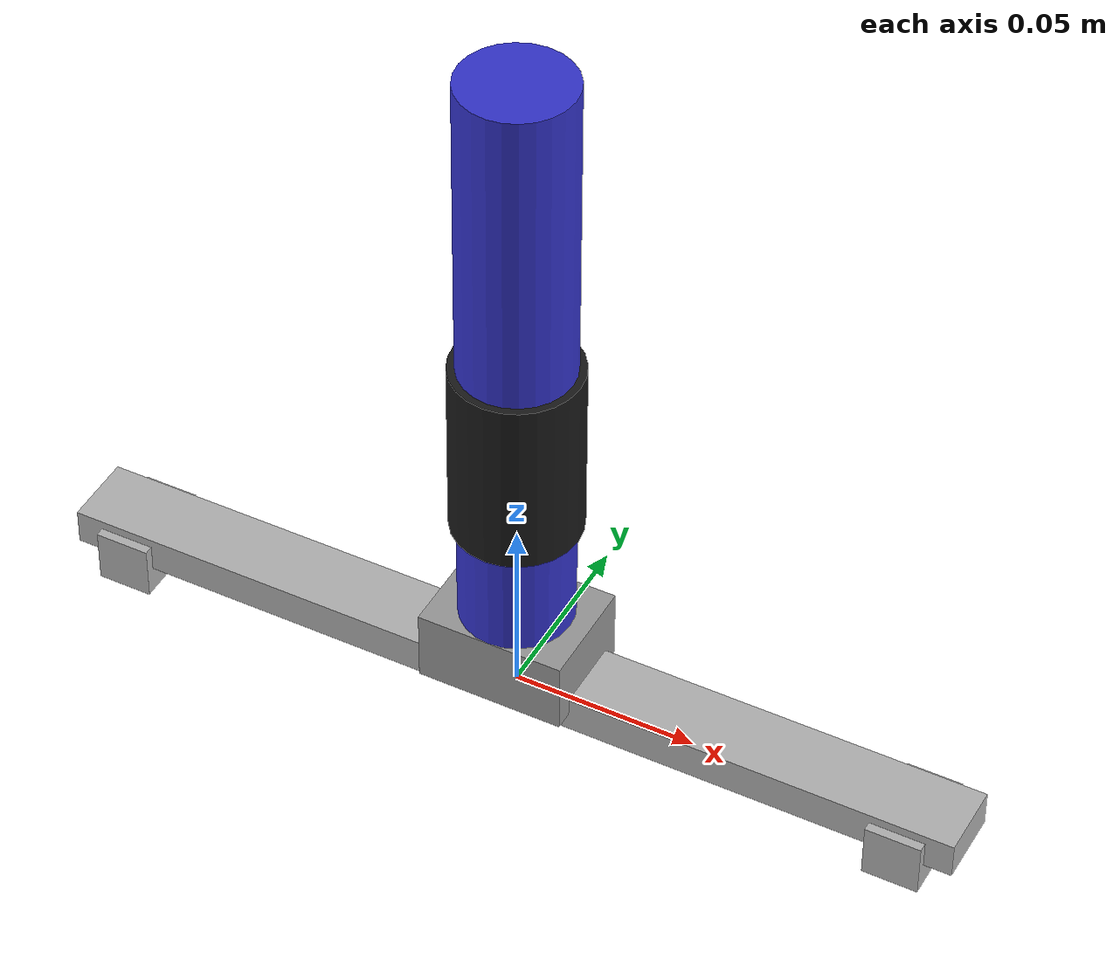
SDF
<?xml version="1.0"?>
<sdf version="1.7">
  <model name="window_squeegee">
    <static>false</static>
    <self_collide>false</self_collide>

    <!-- Main squeegee body -->
    <link name="squeegee_body">
      <pose>0 0 0 0 0 0</pose>

      <inertial>
        <mass>0.18</mass>
        <pose>0 0 0.08 0 0 0</pose>
        <inertia>
          <ixx>0.0009</ixx>
          <ixy>0</ixy>
          <ixz>0</ixz>
          <iyy>0.0012</iyy>
          <iyz>0</iyz>
          <izz>0.0015</izz>
        </inertia>
      </inertial>

      <!-- Handle -->
      <visual name="handle_visual">
        <pose>0 0 0.1 0 0 0</pose>
        <geometry>
          <cylinder>
            <radius>0.015</radius>
            <length>0.18</length>
          </cylinder>
        </geometry>
        <material>
          <ambient>0.2 0.2 0.8 1</ambient>
          <diffuse>0.2 0.2 0.8 1</diffuse>
          <specular>0.3 0.3 0.3 1</specular>
        </material>
      </visual>

      <collision name="handle_collision">
        <pose>0 0 0.1 0 0 0</pose>
        <geometry>
          <cylinder>
            <radius>0.015</radius>
            <length>0.18</length>
          </cylinder>
        </geometry>
      </collision>

      <!-- Ergonomic grip -->
      <visual name="grip_visual">
        <pose>0 0 0.08 0 0 0</pose>
        <geometry>
          <cylinder>
            <radius>0.017</radius>
            <length>0.05</length>
          </cylinder>
        </geometry>
        <material>
          <ambient>0.1 0.1 0.1 1</ambient>
          <diffuse>0.1 0.1 0.1 1</diffuse>
          <specular>0.05 0.05 0.05 1</specular>
        </material>
      </visual>

      <!-- Metal frame/holder -->
      <visual name="frame_visual">
        <pose>0 0 0.005 0 0 0</pose>
        <geometry>
          <box>
            <size>0.25 0.02 0.01</size>
          </box>
        </geometry>
        <material>
          <ambient>0.7 0.7 0.7 1</ambient>
          <diffuse>0.7 0.7 0.7 1</diffuse>
          <specular>0.5 0.5 0.5 1</specular>
        </material>
      </visual>

      <collision name="frame_collision">
        <pose>0 0 0.005 0 0 0</pose>
        <geometry>
          <box>
            <size>0.25 0.02 0.01</size>
          </box>
        </geometry>
      </collision>

      <!-- Rubber blade (main cleaning element) -->
      <visual name="rubber_blade_visual">
        <pose>0 0 -0.003 0 0 0</pose>
        <geometry>
          <box>
            <size>0.24 0.003 0.008</size>
          </box>
        </geometry>
        <material>
          <ambient>0.1 0.1 0.1 1</ambient>
          <diffuse>0.2 0.2 0.2 1</diffuse>
          <specular>0.05 0.05 0.05 1</specular>
        </material>
      </visual>

      <collision name="rubber_blade_collision">
        <pose>0 0 -0.003 0 0 0</pose>
        <geometry>
          <box>
            <size>0.24 0.003 0.008</size>
          </box>
        </geometry>
        <surface>
          <friction>
            <ode>
              <mu>0.8</mu>
              <mu2>0.8</mu2>
            </ode>
          </friction>
          <bounce>
            <restitution_coefficient>0.1</restitution_coefficient>
          </bounce>
          <contact>
            <ode>
              <soft_cfm>0.05</soft_cfm>
              <soft_erp>0.2</soft_erp>
              <kp>5000</kp>
              <kd>50</kd>
            </ode>
          </contact>
        </surface>
      </collision>

      <!-- Corner supports (small metal pieces holding rubber) -->
      <visual name="corner_support_left">
        <pose>-0.11 0 0 0 0 0</pose>
        <geometry>
          <box>
            <size>0.015 0.025 0.015</size>
          </box>
        </geometry>
        <material>
          <ambient>0.7 0.7 0.7 1</ambient>
          <diffuse>0.7 0.7 0.7 1</diffuse>
          <specular>0.5 0.5 0.5 1</specular>
        </material>
      </visual>

      <visual name="corner_support_right">
        <pose>0.11 0 0 0 0 0</pose>
        <geometry>
          <box>
            <size>0.015 0.025 0.015</size>
          </box>
        </geometry>
        <material>
          <ambient>0.7 0.7 0.7 1</ambient>
          <diffuse>0.7 0.7 0.7 1</diffuse>
          <specular>0.5 0.5 0.5 1</specular>
        </material>
      </visual>

      <!-- Handle connection joint -->
      <visual name="connection_joint">
        <pose>0 0 0.015 0 0 0</pose>
        <geometry>
          <box>
            <size>0.04 0.03 0.02</size>
          </box>
        </geometry>
        <material>
          <ambient>0.6 0.6 0.6 1</ambient>
          <diffuse>0.6 0.6 0.6 1</diffuse>
          <specular>0.4 0.4 0.4 1</specular>
        </material>
      </visual>

      <collision name="connection_joint_collision">
        <pose>0 0 0.015 0 0 0</pose>
        <geometry>
          <box>
            <size>0.04 0.03 0.02</size>
          </box>
        </geometry>
      </collision>

    </link>

  </model>
</sdf>
